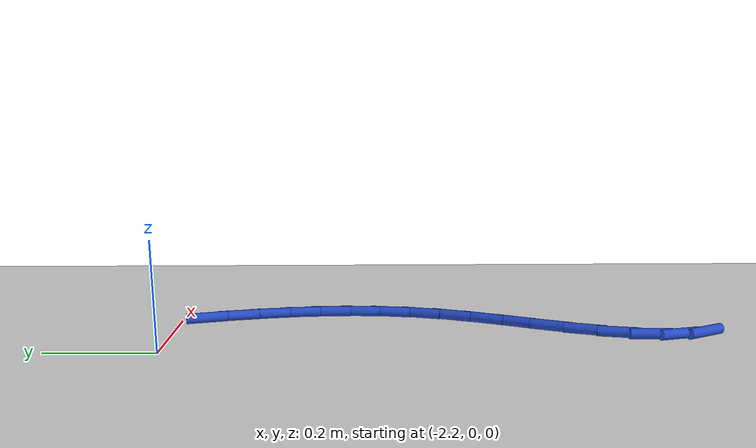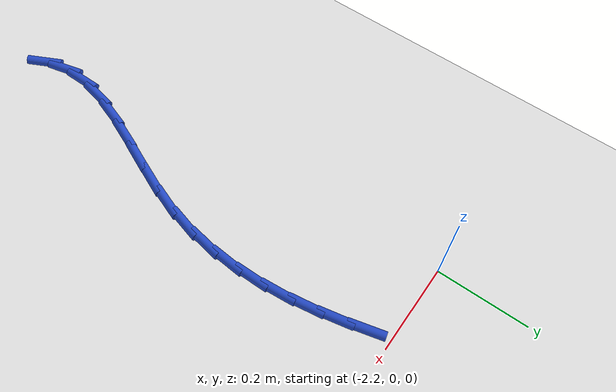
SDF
<sdf version="1.6">
 <world name="default">
  <model name="ground_plane">
   <static>1</static>
   <link name="link">
    <collision name="collision">
     <geometry><plane><normal>0 0 1</normal><size>100 100</size></plane></geometry>
     <surface><friction><ode><mu>100</mu><mu2>50</mu2></ode></friction></surface>
    </collision>
    <visual name="visual">
     <cast_shadows>0</cast_shadows>
     <geometry><plane><normal>0 0 1</normal><size>100 100</size></plane></geometry>
     <material>
      <script><uri>file://media/materials/scripts/gazebo.material</uri><name>Gazebo/WhiteGlow</name></script>
     </material>
    </visual>
   </link>
  </model>
  <model name="line">
   <link name="link_66">
    <pose>-2.010236351274228 -0.04993403891323519 0.01 0 1.57 -1.3216279473542016</pose>
    <collision name="collision">
     <geometry><cylinder><radius>0.01</radius><length>0.08</length></cylinder></geometry>
    </collision>
    <visual name="visual">
     <material>
      <script><name>Gazebo/Blue</name><uri>file://media/materials/scripts/gazebo.material</uri></script>
     </material>
     <geometry><cylinder><radius>0.01</radius><length>0.08</length></cylinder></geometry>
    </visual>
   </link>
   <link name="link_67">
    <pose>-1.994827422369385 -0.11049033437975582 0.01 0 1.57 -1.3679384055475745</pose>
    <collision name="collision">
     <geometry><cylinder><radius>0.01</radius><length>0.08</length></cylinder></geometry>
    </collision>
    <visual name="visual">
     <material>
      <script><name>Gazebo/Blue</name><uri>file://media/materials/scripts/gazebo.material</uri></script>
     </material>
     <geometry><cylinder><radius>0.01</radius><length>0.08</length></cylinder></geometry>
    </visual>
   </link>
   <link name="link_68">
    <pose>-1.9823970884499076 -0.17092354765299572 0.01 0 1.57 -1.424364897546352</pose>
    <collision name="collision">
     <geometry><cylinder><radius>0.01</radius><length>0.08</length></cylinder></geometry>
    </collision>
    <visual name="visual">
     <material>
      <script><name>Gazebo/Blue</name><uri>file://media/materials/scripts/gazebo.material</uri></script>
     </material>
     <geometry><cylinder><radius>0.01</radius><length>0.08</length></cylinder></geometry>
    </visual>
   </link>
   <link name="link_69">
    <pose>-1.9734941363366914 -0.23128782982356239 0.01 0 1.57 -1.4909857149878063</pose>
    <collision name="collision">
     <geometry><cylinder><radius>0.01</radius><length>0.08</length></cylinder></geometry>
    </collision>
    <visual name="visual">
     <material>
      <script><name>Gazebo/Blue</name><uri>file://media/materials/scripts/gazebo.material</uri></script>
     </material>
     <geometry><cylinder><radius>0.01</radius><length>0.08</length></cylinder></geometry>
    </visual>
   </link>
   <link name="link_70">
    <pose>-1.9686673528506335 -0.2916373319820634 0.01 0 1.57 -1.5674541997485871</pose>
    <collision name="collision">
     <geometry><cylinder><radius>0.01</radius><length>0.08</length></cylinder></geometry>
    </collision>
    <visual name="visual">
     <material>
      <script><name>Gazebo/Blue</name><uri>file://media/materials/scripts/gazebo.material</uri></script>
     </material>
     <geometry><cylinder><radius>0.01</radius><length>0.08</length></cylinder></geometry>
    </visual>
   </link>
   <link name="link_71">
    <pose>-1.9684655248126308 -0.35202620521910366 0.01 0 1.57 1.4887764255105878</pose>
    <collision name="collision">
     <geometry><cylinder><radius>0.01</radius><length>0.08</length></cylinder></geometry>
    </collision>
    <visual name="visual">
     <material>
      <script><name>Gazebo/Blue</name><uri>file://media/materials/scripts/gazebo.material</uri></script>
     </material>
     <geometry><cylinder><radius>0.01</radius><length>0.08</length></cylinder></geometry>
    </visual>
   </link>
   <link name="link_72">
    <pose>-1.9734374390435803 -0.412508600625291 0.01 0 1.57 1.3962037946877164</pose>
    <collision name="collision">
     <geometry><cylinder><radius>0.01</radius><length>0.08</length></cylinder></geometry>
    </collision>
    <visual name="visual">
     <material>
      <script><name>Gazebo/Blue</name><uri>file://media/materials/scripts/gazebo.material</uri></script>
     </material>
     <geometry><cylinder><radius>0.01</radius><length>0.08</length></cylinder></geometry>
    </visual>
   </link>
   <link name="link_73">
    <pose>-1.9841318823643792 -0.47313866929123194 0.01 0 1.57 1.2988217189551825</pose>
    <collision name="collision">
     <geometry><cylinder><radius>0.01</radius><length>0.08</length></cylinder></geometry>
    </collision>
    <visual name="visual">
     <material>
      <script><name>Gazebo/Blue</name><uri>file://media/materials/scripts/gazebo.material</uri></script>
     </material>
     <geometry><cylinder><radius>0.01</radius><length>0.08</length></cylinder></geometry>
    </visual>
   </link>
   <link name="link_74">
    <pose>-2.001096969405766 -0.5339704733248846 0.01 0 1.57 1.2100558095442675</pose>
    <collision name="collision">
     <geometry><cylinder><radius>0.01</radius><length>0.08</length></cylinder></geometry>
    </collision>
    <visual name="visual">
     <material>
      <script><name>Gazebo/Blue</name><uri>file://media/materials/scripts/gazebo.material</uri></script>
     </material>
     <geometry><cylinder><radius>0.01</radius><length>0.08</length></cylinder></geometry>
    </visual>
   </link>
   <link name="link_75">
    <pose>-2.0241033508502264 -0.5949551563363762 0.01 0 1.57 1.1591001720304783</pose>
    <collision name="collision">
     <geometry><cylinder><radius>0.01</radius><length>0.08</length></cylinder></geometry>
    </collision>
    <visual name="visual">
     <material>
      <script><name>Gazebo/Blue</name><uri>file://media/materials/scripts/gazebo.material</uri></script>
     </material>
     <geometry><cylinder><radius>0.01</radius><length>0.08</length></cylinder></geometry>
    </visual>
   </link>
   <link name="link_76">
    <pose>-2.0506461584742945 -0.6557426351225308 0.01 0 1.57 1.1468814128528055</pose>
    <collision name="collision">
     <geometry><cylinder><radius>0.01</radius><length>0.08</length></cylinder></geometry>
    </collision>
    <visual name="visual">
     <material>
      <script><name>Gazebo/Blue</name><uri>file://media/materials/scripts/gazebo.material</uri></script>
     </material>
     <geometry><cylinder><radius>0.01</radius><length>0.08</length></cylinder></geometry>
    </visual>
   </link>
   <link name="link_77">
    <pose>-2.077806398728964 -0.7159280057305901 0.01 0 1.57 1.1731142009757018</pose>
    <collision name="collision">
     <geometry><cylinder><radius>0.01</radius><length>0.08</length></cylinder></geometry>
    </collision>
    <visual name="visual">
     <material>
      <script><name>Gazebo/Blue</name><uri>file://media/materials/scripts/gazebo.material</uri></script>
     </material>
     <geometry><cylinder><radius>0.01</radius><length>0.08</length></cylinder></geometry>
    </visual>
   </link>
   <link name="link_78">
    <pose>-2.1026650780652267 -0.7751063642077952 0.01 0 1.57 1.2430960790879704</pose>
    <collision name="collision">
     <geometry><cylinder><radius>0.01</radius><length>0.08</length></cylinder></geometry>
    </collision>
    <visual name="visual">
     <material>
      <script><name>Gazebo/Blue</name><uri>file://media/materials/scripts/gazebo.material</uri></script>
     </material>
     <geometry><cylinder><radius>0.01</radius><length>0.08</length></cylinder></geometry>
    </visual>
   </link>
   <link name="link_79">
    <pose>-2.122303202934075 -0.8328728066013847 0.01 0 1.57 1.3681020029701516</pose>
    <collision name="collision">
     <geometry><cylinder><radius>0.01</radius><length>0.08</length></cylinder></geometry>
    </collision>
    <visual name="visual">
     <material>
      <script><name>Gazebo/Blue</name><uri>file://media/materials/scripts/gazebo.material</uri></script>
     </material>
     <geometry><cylinder><radius>0.01</radius><length>0.08</length></cylinder></geometry>
    </visual>
   </link>
   <link name="link_80">
    <pose>-2.133801779786502 -0.8888224289586008 0.01 0 1.57 1.5625833819606847</pose>
    <collision name="collision">
     <geometry><cylinder><radius>0.01</radius><length>0.08</length></cylinder></geometry>
    </collision>
    <visual name="visual">
     <material>
      <script><name>Gazebo/Blue</name><uri>file://media/materials/scripts/gazebo.material</uri></script>
     </material>
     <geometry><cylinder><radius>0.01</radius><length>0.08</length></cylinder></geometry>
    </visual>
   </link>
   <link name="link_81">
    <pose>-2.134243054875809 -0.9425504371788513 0.01 0 1.57 -1.3311834907256503</pose>
    <collision name="collision">
     <geometry><cylinder><radius>0.01</radius><length>0.08</length></cylinder></geometry>
    </collision>
    <visual name="visual">
     <material>
      <script><name>Gazebo/Blue</name><uri>file://media/materials/scripts/gazebo.material</uri></script>
     </material>
     <geometry><cylinder><radius>0.01</radius><length>0.08</length></cylinder></geometry>
    </visual>
   </link>
   <link name="link_82">
    <pose>-2.121736374083979 -0.993743042897447 0.01 0 1.57 -1.1045549196344633</pose>
    <collision name="collision">
     <geometry><cylinder><radius>0.01</radius><length>0.08</length></cylinder></geometry>
    </collision>
    <visual name="visual">
     <material>
      <script><name>Gazebo/Blue</name><uri>file://media/materials/scripts/gazebo.material</uri></script>
     </material>
     <geometry><cylinder><radius>0.01</radius><length>0.08</length></cylinder></geometry>
    </visual>
   </link>
  </model>
 </world>
</sdf>
